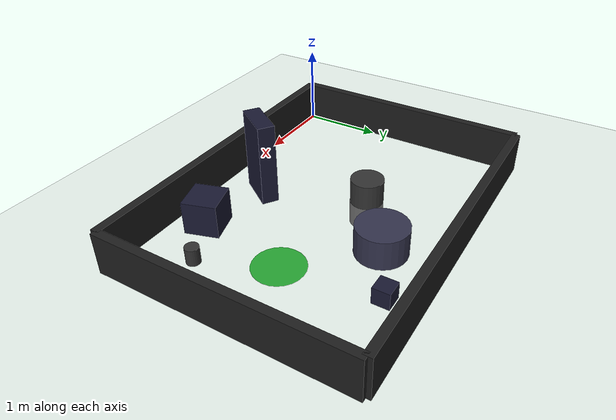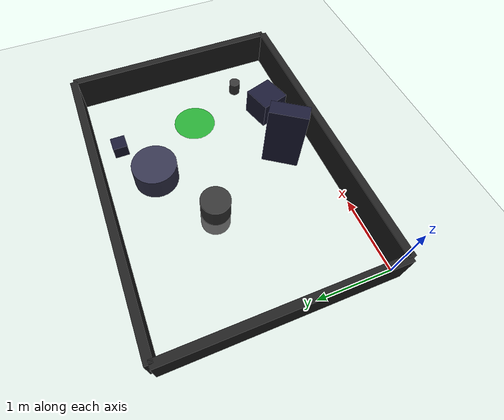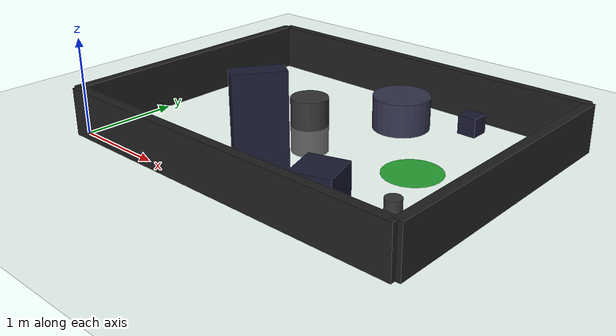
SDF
<?xml version="1.0" ?>
<sdf version="1.6">
  <world name="default">
    <include>
      <uri>model://ground_plane</uri>
    </include>
    <include>
      <uri>model://sun</uri>
    </include>

    <physics type="ode">
      <real_time_update_rate>1000.0</real_time_update_rate>
      <max_step_size>0.001</max_step_size>
      <real_time_factor>1</real_time_factor>
      <ode>
        <solver>
          <type>quick</type>
          <iters>150</iters>
          <precon_iters>0</precon_iters>
          <sor>1.400000</sor>
          <use_dynamic_moi_rescaling>1</use_dynamic_moi_rescaling>
        </solver>
        <constraints>
          <cfm>0.00001</cfm>
          <erp>0.2</erp>
          <contact_max_correcting_vel>2000.000000</contact_max_correcting_vel>
          <contact_surface_layer>0.01000</contact_surface_layer>
        </constraints>
      </ode>
    </physics>

    <!-- Include the marker for the goal position -->
    <include>
      <uri>model://marker</uri>
      <pose>3.0 1.45 0 0 0 0</pose>
    </include>

    <!-- Include several boxes -->
    <include>
      <uri>model://cube-1</uri>
      <pose>2.89 2.6 0.1 0 0 0</pose>
    </include>
    <include>
      <uri>model://cube-2</uri>
      <pose>1.98 0.52 0.5 0 0 -0.6</pose>
    </include>
    <include>
      <uri>model://cube-3</uri>
      <pose>2.83 0.38 0.2 0 0 0.3</pose>
    </include>

    <!-- Include several pushable cylinder objects -->
    <include>
      <uri>model://cylinder-1</uri>
      <pose>2.26 2.25 0.175 0 0 0</pose>
    </include>
    <include>
      <uri>model://cylinder-2</uri>
      <pose>1.50 1.68 0 0 0 0</pose>
    </include>
    <include>
      <uri>model://cylinder-3</uri>
      <pose>3.39 0.65 0.1 0 0 0</pose>
    </include>

    <!-- Include the wall that creates the world limit -->
    <include>
      <uri>model://wall</uri>
      <pose>0.45 1.45 -0.75 0 0 0</pose>
    </include>

    <scene>
      <ambient>0.4 0.4 0.4 1</ambient>
      <background>0.7 0.7 0.7 1</background>
      <shadows>true</shadows>
    </scene>

    <gui fullscreen='0'>
      <camera name='user_camera'>
        <pose>0.0 0.0 17.0 0 1.5708 0</pose>
        <view_controller>orbit</view_controller>
      </camera>
    </gui>
  </world>
</sdf>

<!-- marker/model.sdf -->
<sdf version="1.4">
  <model name="marker">
    <pose frame=''>0 0 0 0 -0 0</pose>
    <static>1</static>
    <gravity>1</gravity>
    <self_collide>0</self_collide>
    <kinematic>0</kinematic>

    <link name="marker_link">
      <collision name="body_collision">
        <geometry>
            <cylinder>
                <radius>.3</radius>
                <length>.0001</length>
            </cylinder>
        </geometry>
        <pose frame=''>0 0 0 0 -0 0</pose>
      </collision>

      <visual name="body_visual">
        <pose frame=''>0 0 0 0 -0 0</pose>
        <geometry>
            <cylinder>
                <radius>.3</radius>
                <length>.0001</length>
            </cylinder>
        </geometry>

        <material>
          <script>
            <uri>file://media/materials/scripts/gazebo.material</uri>
            <name>Gazebo/Green</name>
          </script>
          <ambient>1 1 1 1</ambient>
        </material>
      </visual>

    </link>
  </model>
</sdf>

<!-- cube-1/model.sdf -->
<sdf version="1.4">
  <model name="cube-1">
    <pose frame=''>0 0 0 0 -0 0</pose>
    <static>0</static>
    <gravity>1</gravity>
    <self_collide>0</self_collide>
    <kinematic>0</kinematic>

    <link name="cube_link">
      <collision name="body_collision">
        <geometry>
          <box>
            <size>0.2 0.2 0.2</size>
          </box>
        </geometry>
        <pose frame=''>0 0 0 0 -0 0</pose>
      </collision>

      <visual name="body_visual">
        <pose frame=''>0 0 0 0 -0 0</pose>
        <geometry>
          <box>
            <size>0.2 0.2 0.2</size>
          </box>
        </geometry>
        <material>
          <ambient>0.1 0.1 0.1 1</ambient>
          <diffuse>0.1 0.1 0.2 1</diffuse>
          <specular>0 0 0 0</specular>
          <emissive>0 0 0 1</emissive>
        </material>
      </visual>

      <inertial>
        <mass>0.02</mass>
        <inertia>
          <ixx>0.0001333</ixx>
          <ixy>0</ixy>
          <ixz>0</ixz>
          <iyy>0.0001333</iyy>
          <iyz>0</iyz>
          <izz>0.0001333</izz>
        </inertia>
      </inertial>
    </link>
  </model>
</sdf>

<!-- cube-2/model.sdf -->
<sdf version="1.4">
  <model name="cube-2">
    <pose frame=''>0 0 0 0 -0 0</pose>
    <static>0</static>
    <gravity>1</gravity>
    <self_collide>0</self_collide>
    <kinematic>0</kinematic>

    <link name="cube_link">
      <collision name="body_collision">
        <geometry>
          <box>
            <size>0.2 0.5 1</size>
          </box>
        </geometry>
        <pose frame=''>0 0 0 0 -0 0</pose>
      </collision>

      <visual name="body_visual">
        <pose frame=''>0 0 0 0 -0 0</pose>
        <geometry>
          <box>
            <size>0.2 0.5 1</size>
          </box>
        </geometry>

        <material>
          <ambient>0.1 0.1 0.1 1</ambient>
          <diffuse>0.1 0.1 0.2 1</diffuse>
          <specular>0 0 0 0</specular>
          <emissive>0 0 0 1</emissive>
        </material>
      </visual>

      <inertial>
        <mass>0.3</mass>
        <inertia>
          <ixx>0.026</ixx>
          <ixy>0</ixy>
          <ixz>0</ixz>
          <iyy>0.03125</iyy>
          <iyz>0</iyz>
          <izz>0.00725</izz>
        </inertia>
      </inertial>
    </link>
  </model>
</sdf>

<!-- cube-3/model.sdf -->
<sdf version="1.4">
  <model name="cube-3">
    <pose frame=''>0 0 0 0 -0 0</pose>
    <static>0</static>
    <gravity>1</gravity>
    <self_collide>0</self_collide>
    <kinematic>0</kinematic>

    <link name="cube_link">
      <collision name="body_collision">
        <geometry>
          <box>
            <size>0.4 0.4 0.4</size>
          </box>
        </geometry>
        <pose frame=''>0 0 0 0 -0 0</pose>
      </collision>

      <visual name="body_visual">
        <pose frame=''>0 0 0 0 -0 0</pose>
        <geometry>
          <box>
            <size>0.4 0.4 0.4</size>
          </box>
        </geometry>

        <material>
          <ambient>0.1 0.1 0.1 1</ambient>
          <diffuse>0.1 0.1 0.2 1</diffuse>
          <specular>0 0 0 0</specular>
          <emissive>0 0 0 1</emissive>
        </material>
      </visual>

      <inertial>
        <mass>0.15</mass>
        <inertia>
          <ixx>0.004</ixx>
          <ixy>0</ixy>
          <ixz>0</ixz>
          <iyy>0.004</iyy>
          <iyz>0</iyz>
          <izz>0.004</izz>
        </inertia>
      </inertial>
    </link>
  </model>
</sdf>

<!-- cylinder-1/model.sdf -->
<sdf version="1.4">
  <model name="cylinder-1">
    <pose frame=''>0 0 0 0 -0 0</pose>
    <static>0</static>
    <gravity>1</gravity>
    <self_collide>0</self_collide>
    <kinematic>0</kinematic>

    <link name="cylinder_link">
      <collision name="body_collision">
        <geometry>
            <cylinder>
                <radius>.3</radius>
                <length>.35</length>
            </cylinder>
        </geometry>
        <pose frame=''>0 0 0 0 -0 0</pose>
      </collision>

      <visual name="body_visual">
        <pose frame=''>0 0 0 0 -0 0</pose>
        <geometry>
            <cylinder>
                <radius>.3</radius>
                <length>.35</length>
            </cylinder>
        </geometry>
        <material>
          <ambient>0.5 0.5 0.5 1</ambient>
          <diffuse>0.2 0.2 0.3 1</diffuse>
          <specular>0 0 0 0</specular>
          <emissive>0 0 0 1</emissive>
        </material>
      </visual>

      <inertial>
        <mass>0.03</mass>
        <inertia>
          <ixx>0.000981</ixx>
          <ixy>0</ixy>
          <ixz>0</ixz>
          <iyy>0.000981</iyy>
          <iyz>0</iyz>
          <izz>0.00135</izz>
        </inertia>
      </inertial>
    </link>
  </model>
</sdf>

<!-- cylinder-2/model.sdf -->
<sdf version="1.4">
  <model name="cylinder-2">
    <pose frame=''>0 0 0 0 -0 0</pose>
    <static>0</static>
    <gravity>1</gravity>
    <self_collide>0</self_collide>
    <kinematic>0</kinematic>

    <link name="cylinder_link">
      <collision name="body_collision">
        <geometry>
            <cylinder>
                <radius>.2</radius>
                <length>.6</length>
            </cylinder>
        </geometry>
        <pose frame=''>0 0 0 0 -0 0</pose>
      </collision>

      <visual name="body_visual">
        <pose frame=''>0 0 0 0 -0 0</pose>
        <geometry>
            <cylinder>
                <radius>.2</radius>
                <length>.6</length>
            </cylinder>
        </geometry>
        <material>
          <ambient>1.0 0.8 0.8 1</ambient>
          <diffuse>0.2 0.2 0.2 1</diffuse>
          <specular>0 0 0 0</specular>
          <emissive>0 0 0 1</emissive>
        </material>
      </visual>

      <inertial>
        <mass>0.04</mass>
        <inertia>
          <ixx>0.0016</ixx>
          <ixy>0</ixy>
          <ixz>0</ixz>
          <iyy>0.0016</iyy>
          <iyz>0</iyz>
          <izz>0.0008</izz>
        </inertia>
      </inertial>
    </link>
  </model>
</sdf>

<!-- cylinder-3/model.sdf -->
<sdf version="1.4">
  <model name="cylinder-3">
    <pose frame=''>0 0 0 0 -0 0</pose>
    <static>0</static>
    <gravity>1</gravity>
    <self_collide>0</self_collide>
    <kinematic>0</kinematic>

    <link name="cylinder_link">
      <collision name="body_collision">
        <geometry>
            <cylinder>
                <radius>.08</radius>
                <length>.2</length>
            </cylinder>
        </geometry>
        <pose frame=''>0 0 0 0 -0 0</pose>
      </collision>

      <visual name="body_visual">
        <pose frame=''>0 0 0 0 -0 0</pose>
        <geometry>
            <cylinder>
                <radius>.08</radius>
                <length>.2</length>
            </cylinder>
        </geometry>
        <material>
          <ambient>1.0 0.8 0.8 1</ambient>
          <diffuse>0.2 0.2 0.2 1</diffuse>
          <specular>0 0 0 0</specular>
          <emissive>0 0 0 1</emissive>
        </material>
      </visual>

      <inertial>
        <mass>0.05</mass>
        <inertia>
          <ixx>0.000247</ixx>
          <ixy>0</ixy>
          <ixz>0</ixz>
          <iyy>0.000247</iyy>
          <iyz>0</iyz>
          <izz>0.00016</izz>
        </inertia>
      </inertial>
    </link>
  </model>
</sdf>

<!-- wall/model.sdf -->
<sdf version="1.4">
  <model name="wall">
    <pose frame=''>0 0 0 0 -0 0</pose>
    <static>1</static>
    <gravity>1</gravity>
    <self_collide>1</self_collide>
    <kinematic>0</kinematic>

    <link name="wall_link_left">
      <collision name="body_collision">
        <geometry>
            <box>
                <size>4 0.1 0.5</size>
            </box>
        </geometry>
        <pose frame=''>0 0 1 0 -0 0</pose>
      </collision>

      <visual name="wall_visual_left">
        <pose frame=''>0 0 1 0 -0 0</pose>
        <geometry>
            <box>
                <size>4 0.1 0.5</size>
            </box>
        </geometry>

        <material>
            <script>
                <uri>file://media/materials/scripts/gazebo.material</uri>
                <name>Gazebo/Black</name>
            </script>
            <ambient>1 1 1 1</ambient>
        </material>
      </visual>

      <pose frame=''>1.5 -1.5 0 0 -0 0</pose>
    </link>

    <link name="wall_link_right">
      <collision name="body_collision">
        <geometry>
            <box>
                <size>4 0.1 0.5</size>
            </box>
        </geometry>
        <pose frame=''>0 0 1 0 -0 0</pose>
      </collision>

      <visual name="wall_visual_right">
        <pose frame=''>0 0 1 0 -0 0</pose>
        <geometry>
            <box>
                <size>4 0.1 0.5</size>
            </box>
        </geometry>

        <material>
            <script>
                <uri>file://media/materials/scripts/gazebo.material</uri>
                <name>Gazebo/Black</name>
            </script>
            <ambient>1 1 1 1</ambient>
        </material>
      </visual>

      <pose frame=''>1.5 1.5 0 0 -0 0</pose>
    </link>

    <link name="wall_link_back">
      <collision name="body_collision">
        <geometry>
            <box>
                <size>0.1 3.0 0.5</size>
            </box>
        </geometry>
        <pose frame=''>0 0 1 0 -0 0</pose>
      </collision>

      <visual name="wall_visual_back">
        <pose frame=''>0 0 1 0 -0 0</pose>
        <geometry>
            <box>
                <size>0.1 3.0 0.5</size>
            </box>
        </geometry>

        <material>
            <script>
                <uri>file://media/materials/scripts/gazebo.material</uri>
                <name>Gazebo/Black</name>
            </script>
            <ambient>1 1 1 1</ambient>
        </material>
      </visual>

      <pose frame=''>3.5 0 0 0 -0 0</pose>
    </link>

    <link name="wall_link_front">
      <collision name="body_collision">
        <geometry>
            <box>
                <size>0.1 3.0 0.5</size>
            </box>
        </geometry>
        <pose frame=''>0 0 1 0 -0 0</pose>
      </collision>

      <visual name="wall_visual_front">
        <pose frame=''>0 0 1 0 -0 0</pose>
        <geometry>
            <box>
                <size>0.1 3.0 0.5</size>
            </box>
        </geometry>

        <material>
            <script>
                <uri>file://media/materials/scripts/gazebo.material</uri>
                <name>Gazebo/Black</name>
            </script>
            <ambient>1 1 1 1</ambient>
        </material>
      </visual>

      <pose frame=''>-0.5 0 0 0 -0 0</pose>
    </link>

  </model>
</sdf>
